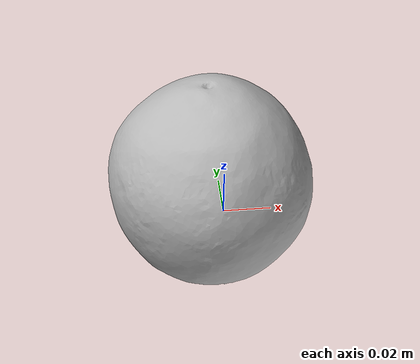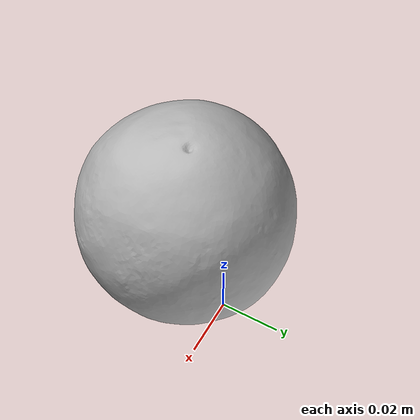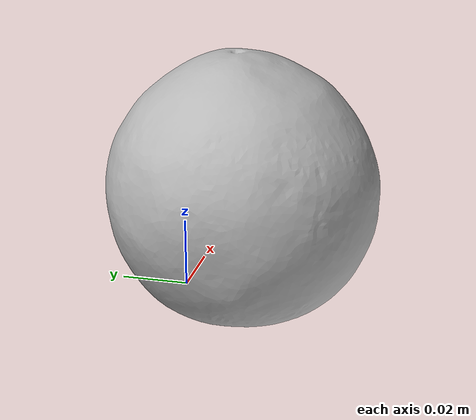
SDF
<?xml version='1.0'?>
<sdf version="1.4">
  <model name="orange">
    <static>false</static>
    <link name="link">
      <inertial>
        <pose>-0.007142269033564904 -0.018368262802614648 0.03363364365090191 -1.8314058421219284 0.386611357526003 2.97317089799962</pose>
        <mass>0.00020272265250081666</mass>
        <inertia>
          <ixx>1.096787863191006e-07</ixx>
          <ixy>-5.303960689671446e-24</ixy>
          <ixz>1.3548944528656157e-23</ixz>
          <iyy>1.0738896725229532e-07</iyy>
          <iyz>2.4781900490888522e-23</iyz>
          <izz>1.065750028785584e-07</izz>
        </inertia>
      </inertial>
      <collision name="collision">
        <geometry>
          <mesh>
            <!-- Use a downsampled mesh for collisions -->
            <uri>model://017_orange/google_16k/017_orange.obj</uri>
            </mesh>
        </geometry>
        <surface>
          <friction>
            <ode>
              <mu>0.9</mu>
              <mu2>0.9</mu2>
            </ode>
          </friction>
          <contact>
            <ode>
              <kp>1000000000000.0</kp>
              <kd>1</kd>
              <min_depth>0.0001</min_depth>
              <max_vel>0.01</max_vel>
            </ode>
          </contact>
          <bounce>
            <restitution_coefficient>0.1</restitution_coefficient>
            <threshold>1000.0</threshold>
          </bounce>
        </surface>
      </collision>
      <visual name="visual">
        <geometry>
          <mesh>
            <uri>model://017_orange/google_16k/017_orange.dae</uri>
            </mesh>
        </geometry>
      </visual>
    </link>
  </model>
</sdf>
